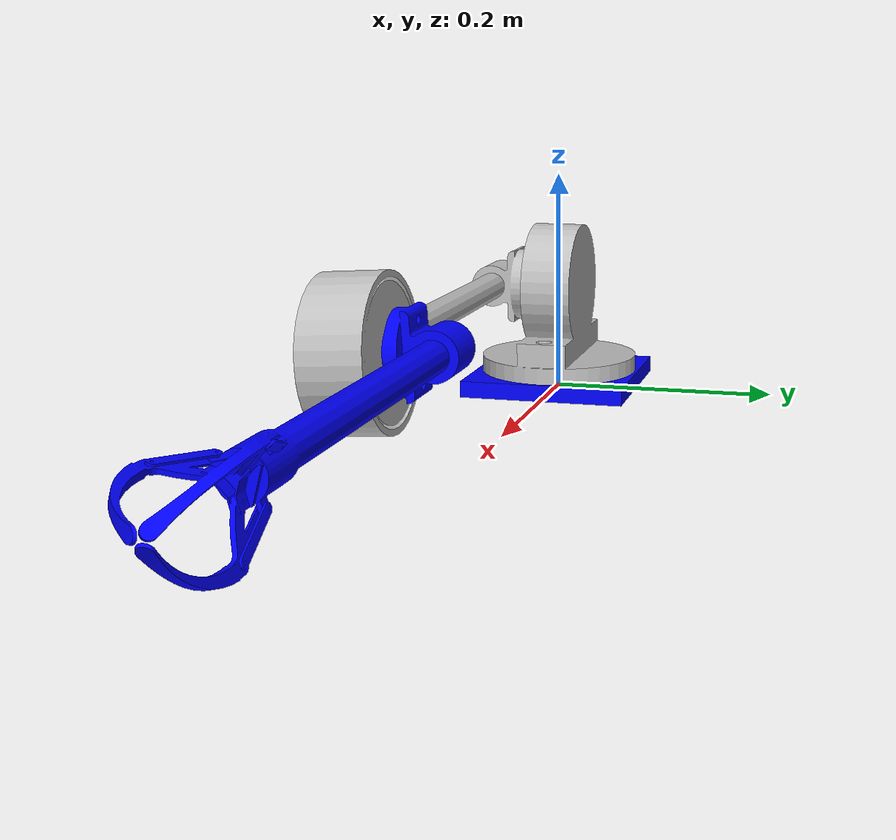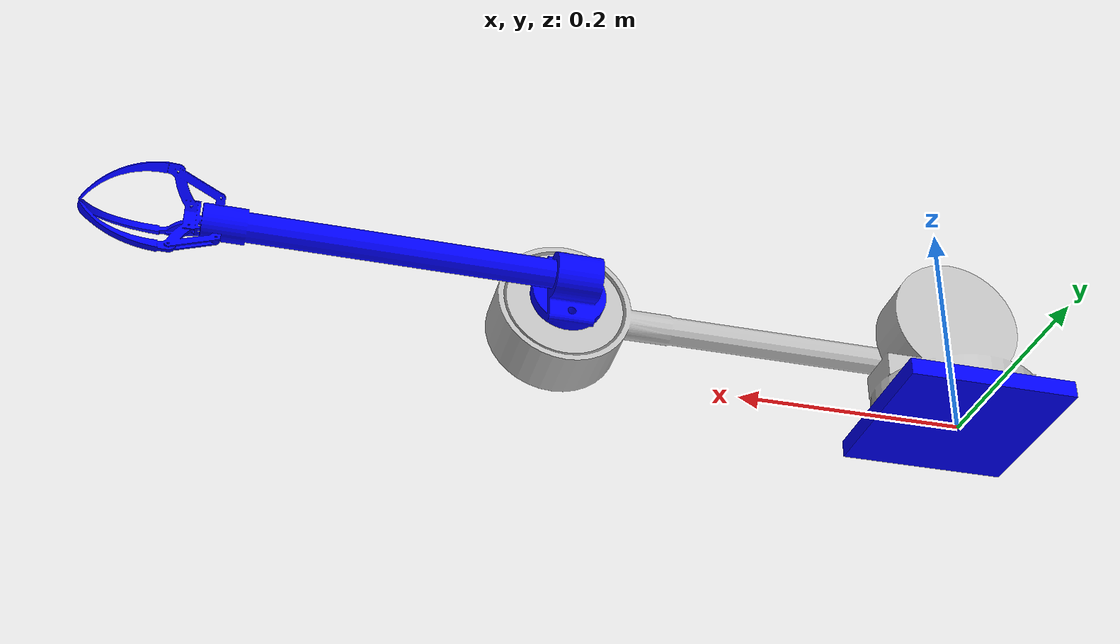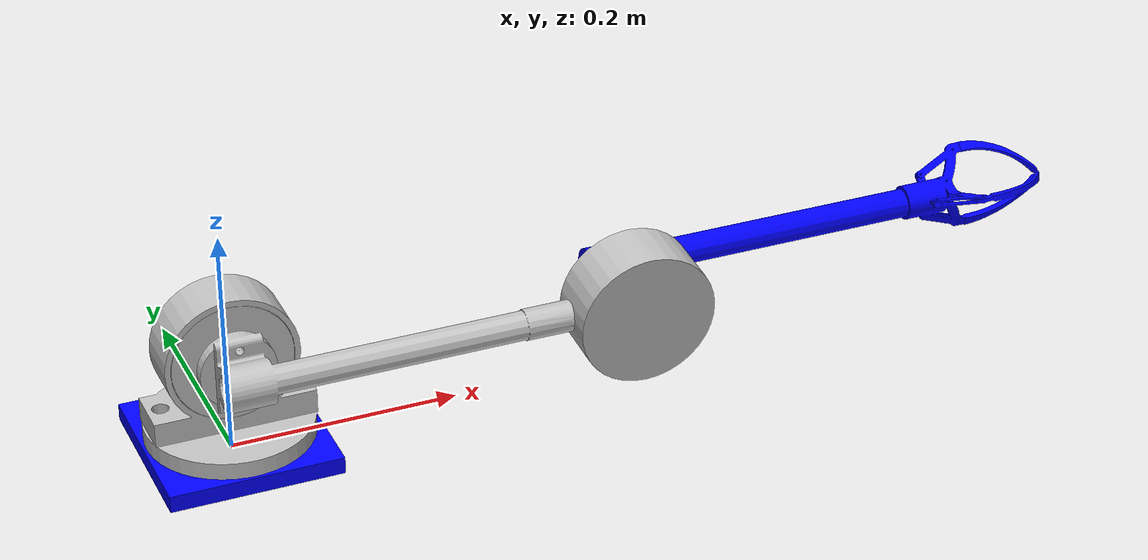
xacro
<?xml version="1.0"?>
<robot xmlns:xacro="http://www.ros.org/wiki/xacro" name="urdf_assembly6">

<link name="world">

</link>

<xacro:macro name="link" params="colour">

  <link
    name="base_link">
    <inertial>
      <origin
        xyz="6.93889390390723E-18 0 0.0075"
        rpy="0 0 0" />
      <mass
        value="0.3375" />
      <inertia
        ixx="0.000639140625"
        ixy="-3.12792326762068E-20"
        ixz="-4.19450715480328E-22"
        iyy="0.000639140625"
        iyz="3.8359837309772E-20"
        izz="0.001265625" />
    </inertial>
    <visual>
      <origin
        xyz="0 0 0"
        rpy="0 0 0" />
      <geometry>
        <mesh
          filename="package://urdf_assembly6/meshes/base_link.STL" />
      </geometry>
      <material
        name="">
        <color
          rgba="${colour}" />
      </material>
    </visual>
    <collision>
      <origin
        xyz="0 0 0"
        rpy="0 0 0"/>
      <geometry>
        <mesh
          filename="package://urdf_assembly6/meshes/base_link.STL" />
      </geometry>
    </collision>
  </link>

  <gazebo reference="base_link">
      <material>Gazebo/Blue</material>
  </gazebo>

  <joint name="ground" type="fixed">
    <origin xyz="0.0 0.0 0.0" rpy="0.0 0.0 0.0"/>
    <parent link="world"/>
    <child link="base_link"/>
    <axis xyz="0.0 0.0 0.0"/>
    <limit lower="0.0" upper="0.0" effort="0.0" velocity="0.0"/>
  </joint>

  <link
    name="link1">
    <inertial>
      <origin
        xyz="-6.93889390390723E-18 -0.00194499362413486 0.0331894017254473"
        rpy="0 0 0" />
      <mass
        value="0.487468154605903" />
      <inertia
        ixx="0.000691366465365935"
        ixy="9.5244100849736E-20"
        ixz="3.65666639180382E-20"
        iyy="0.00100288428857242"
        iyz="-5.68942714999761E-06"
        izz="0.00103205877052672" />
    </inertial>
    <visual>
      <origin
        xyz="0 0 0"
        rpy="0 0 0" />
      <geometry>
        <mesh
          filename="package://urdf_assembly6/meshes/link1.STL" />
      </geometry>
      <material
        name="">
        <color
          rgba="0.752941176470588 0.752941176470588 0.752941176470588 1" />
      </material>
    </visual>
    <collision>
      <origin
        xyz="0 0 0"
        rpy="0 0 0" />
      <geometry>
        <mesh
          filename="package://urdf_assembly6/meshes/link1.STL" />
      </geometry>
    </collision>
  </link>

  <gazebo reference="link1">
      <material>Gazebo/Black</material>
  </gazebo>

  <joint
    name="joint1"
    type="continuous">
    <origin
      xyz="0 0 0.015"
      rpy="0 0 0" />
    <parent
      link="base_link" />
    <child
      link="link1" />
    <axis
      xyz="0 0 1" />

    <limit lower="-1.57" upper="1.57" effort="100" velocity="1" />
    <dynamics damping="0.01" friction="0.01" />
  </joint>

  <link
    name="link2">
    <inertial>
      <origin
        xyz="0.0493703892650644 0.210057354276472 -0.000171992416026251"
        rpy="0 0 0" />
      <mass
        value="0.36874215950049" />
      <inertia
        ixx="0.00102864041702426"
        ixy="-1.8042072189251E-06"
        ixz="-1.28425527515793E-05"
        iyy="0.000316825139187745"
        iyz="1.14411121620837E-07"
        izz="0.000818982430369754" />
    </inertial>
    <visual>
      <origin
        xyz="0 0 0"
        rpy="0 0 0" />
      <geometry>
        <mesh
          filename="package://urdf_assembly6/meshes/link2.STL" />
      </geometry>
      <material
        name="">
        <color
          rgba="0.752941176470588 0.752941176470588 0.752941176470588 1" />
      </material>
    </visual>
    <collision>
      <origin
        xyz="0 0 0"
        rpy="0 0 0" />
      <geometry>
        <mesh
          filename="package://urdf_assembly6/meshes/link2.STL" />
      </geometry>
    </collision>
  </link>
  <joint
    name="joint2"
    type="continuous">
    <origin
      xyz="0 -0.0075 0.080337"
      rpy="0 0 -1.5708" />
    <parent
      link="link1" />
    <child
      link="link2" />
    <axis
      xyz="-1 0 0" />

    <limit lower="-1.57" upper="1.57" effort="100" velocity="1" />
    <dynamics damping="0.01" friction="0.01" />
  </joint>
  <link
    name="link3">
    <inertial>
      <origin
        xyz="-0.0832059523638297 0.00884257156732116 -1.47722040155784E-09"
        rpy="0 0 0" />
      <mass
        value="0.186526163804662" />
      <inertia
        ixx="4.61908892080329E-05"
        ixy="5.48608693427943E-11"
        ixz="-3.3453449474086E-11"
        iyy="0.000552824400918623"
        iyz="1.52247768903167E-11"
        izz="0.000543410888228976" />
    </inertial>
    <visual>
      <origin
        xyz="0 0 0"
        rpy="0 0 0" />
      <geometry>
        <mesh
          filename="package://urdf_assembly6/meshes/link3.STL" />
      </geometry>
      <material
        name="">
        <color
          rgba="${colour}" />continu
      </material>
    </visual>
    <collision>
      <origin
        xyz="0 0 0"
        rpy="0 0 0" />
      <geometry>
        <mesh
          filename="package://urdf_assembly6/meshes/link3.STL" />
      </geometry>
    </collision>
  </link>
  <joint
    name="joint3"
    type="continuous">
    <origin
      xyz="0.00021468 0.34 0.003361"
      rpy="-0.063787 0 -1.5708" />
    <parent
      link="link2" />
    <child
      link="link3" />
    <axis
      xyz="0 1 0" />

    <limit lower="-1.57" upper="1.57" effort="100" velocity="1" />
    <dynamics damping="0.01" friction="0.01" />
  </joint>
</xacro:macro>

<xacro:link colour="0.0 0.0 1.0 1.0"/>

<gazebo>
  <plugin name="gazebo_ros_control" filename="libgazebo_ros_control.so">
    <robotNamespace>/manipulator</robotNamespace>
  </plugin>
</gazebo>

<transmission name="trans_1">
  <type>transmission_interface/SimpleTransmission</type>
  <joint name="joint1">
    <hardwareInterface>hardware_interface/EffortJointInterface</hardwareInterface>
  </joint>
  <actuator name="motor1">
    <mechanicalReduction>1.0</mechanicalReduction>
    <hardwareInterface>hardware_interface/EffortJointInterface</hardwareInterface>
  </actuator>
</transmission>

<transmission name="trans_2">
  <type>transmission_interface/SimpleTransmission</type>
  <joint name="joint2">
    <hardwareInterface>hardware_interface/EffortJointInterface</hardwareInterface>
  </joint>
  <actuator name="motor2">
    <mechanicalReduction>1.0</mechanicalReduction>
    <hardwareInterface>hardware_interface/EffortJointInterface</hardwareInterface>
  </actuator>
</transmission>

<transmission name="trans_3">
  <type>transmission_interface/SimpleTransmission</type>
  <joint name="joint3">
    <hardwareInterface>hardware_interface/EffortJointInterface</hardwareInterface>
  </joint>
  <actuator name="motor3">
    <mechanicalReduction>1.0</mechanicalReduction>
    <hardwareInterface>hardware_interface/EffortJointInterface</hardwareInterface>
  </actuator>
</transmission>

  <gazebo reference="link2">
      <material>Gazebo/Blue</material>
  </gazebo>

  <gazebo reference="link3">
      <material>Gazebo/Black</material>
  </gazebo>

</robot>
